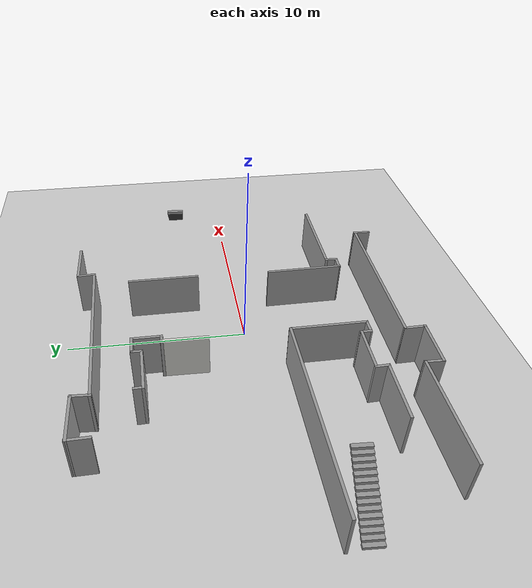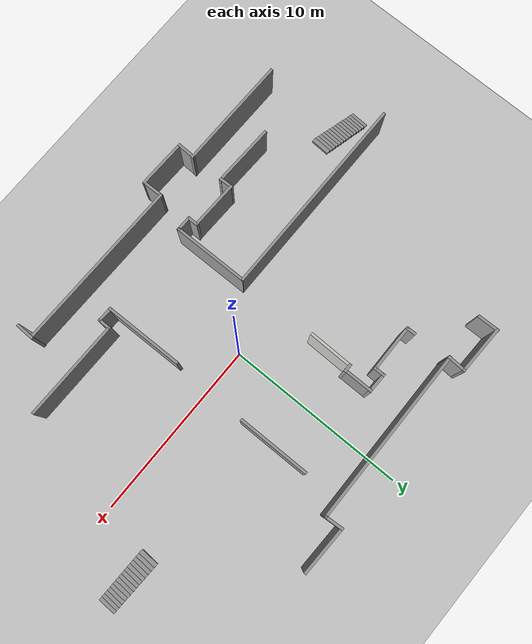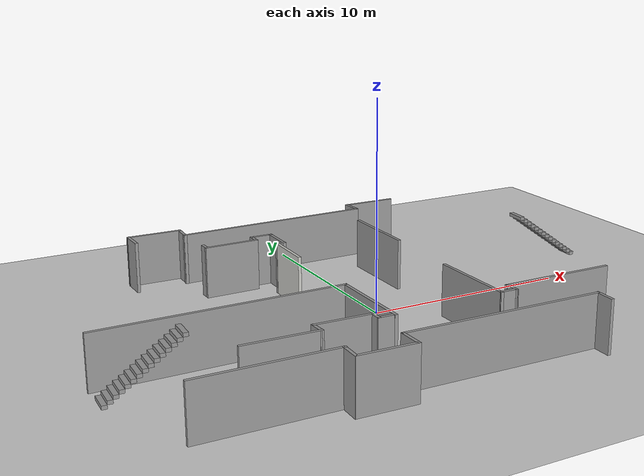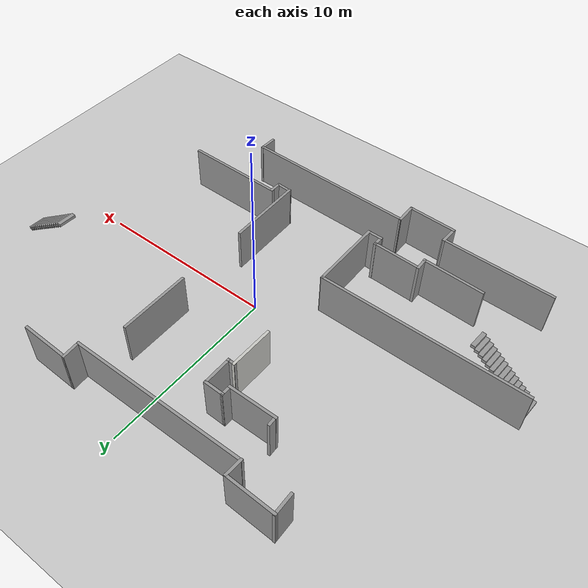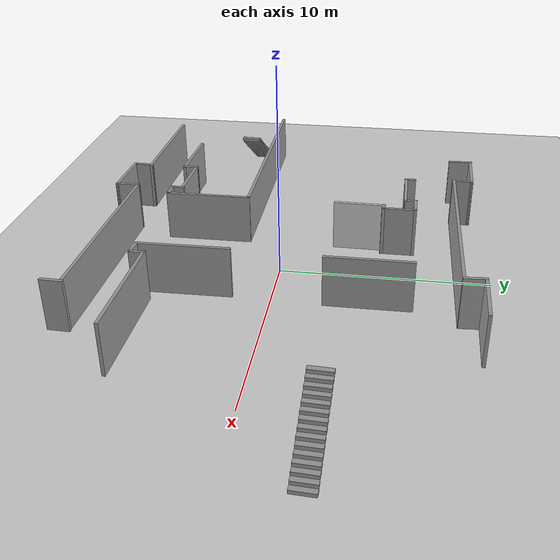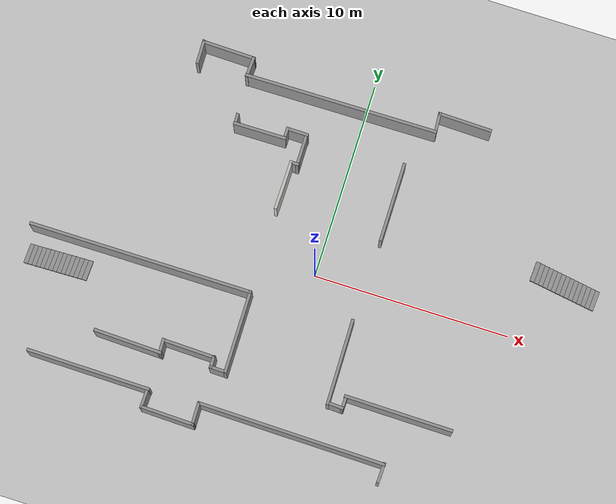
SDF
<sdf version="1.6">
 <world name="default">
  <model name="ground_plane">
   <static>1</static>
   <link name="link">
    <collision name="collision">
     <geometry><plane><normal>0 0 1</normal><size>100 100</size></plane></geometry>
     <surface><friction><ode><mu>100</mu><mu2>50</mu2></ode></friction></surface>
    </collision>
    <visual name="visual">
     <cast_shadows>0</cast_shadows>
     <geometry><plane><normal>0 0 1</normal><size>100 100</size></plane></geometry>
     <material>
      <script><uri>file://media/materials/scripts/gazebo.material</uri><name>Gazebo/Grey</name></script>
     </material>
    </visual>
   </link>
  </model>
  <model name="D1">
   <pose>0 0 0 0 0 -0.05</pose>
   <link name="Stairs_2">
    <visual name="Stairs_2_Visual_0">
     <pose>-13.6651 -3.89309 0.083333 0 -0 1.5708</pose>
     <geometry><box><size>1 0.233333 0.166667</size></box></geometry>
     <material>
      <script><uri>file://media/materials/scripts/gazebo.material</uri><name>Gazebo/Grey</name></script>
      <ambient>1 1 1 1</ambient>
     </material>
     <meta><layer>0</layer></meta>
    </visual>
    <collision name="Stairs_2_Collision_0">
     <geometry><box><size>1 0.233333 0.166667</size></box></geometry>
     <pose>-13.6651 -3.89309 0.083333 0 -0 1.5708</pose>
    </collision>
    <visual name="Stairs_2_Visual_1">
     <pose>-13.4318 -3.89309 0.25 0 -0 1.5708</pose>
     <geometry><box><size>1 0.233333 0.166667</size></box></geometry>
     <material>
      <script><uri>file://media/materials/scripts/gazebo.material</uri><name>Gazebo/Grey</name></script>
      <ambient>1 1 1 1</ambient>
     </material>
     <meta><layer>0</layer></meta>
    </visual>
    <collision name="Stairs_2_Collision_1">
     <geometry><box><size>1 0.233333 0.166667</size></box></geometry>
     <pose>-13.4318 -3.89309 0.25 0 -0 1.5708</pose>
    </collision>
    <visual name="Stairs_2_Visual_2">
     <pose>-13.1984 -3.89309 0.416667 0 -0 1.5708</pose>
     <geometry><box><size>1 0.233333 0.166667</size></box></geometry>
     <material>
      <script><uri>file://media/materials/scripts/gazebo.material</uri><name>Gazebo/Grey</name></script>
      <ambient>1 1 1 1</ambient>
     </material>
     <meta><layer>0</layer></meta>
    </visual>
    <collision name="Stairs_2_Collision_2">
     <geometry><box><size>1 0.233333 0.166667</size></box></geometry>
     <pose>-13.1984 -3.89309 0.416667 0 -0 1.5708</pose>
    </collision>
    <visual name="Stairs_2_Visual_3">
     <pose>-12.9651 -3.89309 0.583333 0 -0 1.5708</pose>
     <geometry><box><size>1 0.233333 0.166667</size></box></geometry>
     <material>
      <script><uri>file://media/materials/scripts/gazebo.material</uri><name>Gazebo/Grey</name></script>
      <ambient>1 1 1 1</ambient>
     </material>
     <meta><layer>0</layer></meta>
    </visual>
    <collision name="Stairs_2_Collision_3">
     <geometry><box><size>1 0.233333 0.166667</size></box></geometry>
     <pose>-12.9651 -3.89309 0.583333 0 -0 1.5708</pose>
    </collision>
    <visual name="Stairs_2_Visual_4">
     <pose>-12.7318 -3.89309 0.75 0 -0 1.5708</pose>
     <geometry><box><size>1 0.233333 0.166667</size></box></geometry>
     <material>
      <script><uri>file://media/materials/scripts/gazebo.material</uri><name>Gazebo/Grey</name></script>
      <ambient>1 1 1 1</ambient>
     </material>
     <meta><layer>0</layer></meta>
    </visual>
    <collision name="Stairs_2_Collision_4">
     <geometry><box><size>1 0.233333 0.166667</size></box></geometry>
     <pose>-12.7318 -3.89309 0.75 0 -0 1.5708</pose>
    </collision>
    <visual name="Stairs_2_Visual_5">
     <pose>-12.4984 -3.89309 0.916667 0 -0 1.5708</pose>
     <geometry><box><size>1 0.233333 0.166667</size></box></geometry>
     <material>
      <script><uri>file://media/materials/scripts/gazebo.material</uri><name>Gazebo/Grey</name></script>
      <ambient>1 1 1 1</ambient>
     </material>
     <meta><layer>0</layer></meta>
    </visual>
    <collision name="Stairs_2_Collision_5">
     <geometry><box><size>1 0.233333 0.166667</size></box></geometry>
     <pose>-12.4984 -3.89309 0.916667 0 -0 1.5708</pose>
    </collision>
    <visual name="Stairs_2_Visual_6">
     <pose>-12.2651 -3.89309 1.08333 0 -0 1.5708</pose>
     <geometry><box><size>1 0.233333 0.166667</size></box></geometry>
     <material>
      <script><uri>file://media/materials/scripts/gazebo.material</uri><name>Gazebo/Grey</name></script>
      <ambient>1 1 1 1</ambient>
     </material>
     <meta><layer>0</layer></meta>
    </visual>
    <collision name="Stairs_2_Collision_6">
     <geometry><box><size>1 0.233333 0.166667</size></box></geometry>
     <pose>-12.2651 -3.89309 1.08333 0 -0 1.5708</pose>
    </collision>
    <visual name="Stairs_2_Visual_7">
     <pose>-12.0318 -3.89309 1.25 0 -0 1.5708</pose>
     <geometry><box><size>1 0.233333 0.166667</size></box></geometry>
     <material>
      <script><uri>file://media/materials/scripts/gazebo.material</uri><name>Gazebo/Grey</name></script>
      <ambient>1 1 1 1</ambient>
     </material>
     <meta><layer>0</layer></meta>
    </visual>
    <collision name="Stairs_2_Collision_7">
     <geometry><box><size>1 0.233333 0.166667</size></box></geometry>
     <pose>-12.0318 -3.89309 1.25 0 -0 1.5708</pose>
    </collision>
    <visual name="Stairs_2_Visual_8">
     <pose>-11.7984 -3.89309 1.41667 0 -0 1.5708</pose>
     <geometry><box><size>1 0.233333 0.166667</size></box></geometry>
     <material>
      <script><uri>file://media/materials/scripts/gazebo.material</uri><name>Gazebo/Grey</name></script>
      <ambient>1 1 1 1</ambient>
     </material>
     <meta><layer>0</layer></meta>
    </visual>
    <collision name="Stairs_2_Collision_8">
     <geometry><box><size>1 0.233333 0.166667</size></box></geometry>
     <pose>-11.7984 -3.89309 1.41667 0 -0 1.5708</pose>
    </collision>
    <visual name="Stairs_2_Visual_9">
     <pose>-11.5651 -3.89309 1.58333 0 -0 1.5708</pose>
     <geometry><box><size>1 0.233333 0.166667</size></box></geometry>
     <material>
      <script><uri>file://media/materials/scripts/gazebo.material</uri><name>Gazebo/Grey</name></script>
      <ambient>1 1 1 1</ambient>
     </material>
     <meta><layer>0</layer></meta>
    </visual>
    <collision name="Stairs_2_Collision_9">
     <geometry><box><size>1 0.233333 0.166667</size></box></geometry>
     <pose>-11.5651 -3.89309 1.58333 0 -0 1.5708</pose>
    </collision>
    <visual name="Stairs_2_Visual_10">
     <pose>-11.3318 -3.89309 1.75 0 -0 1.5708</pose>
     <geometry><box><size>1 0.233333 0.166667</size></box></geometry>
     <material>
      <script><uri>file://media/materials/scripts/gazebo.material</uri><name>Gazebo/Grey</name></script>
      <ambient>1 1 1 1</ambient>
     </material>
     <meta><layer>0</layer></meta>
    </visual>
    <collision name="Stairs_2_Collision_10">
     <geometry><box><size>1 0.233333 0.166667</size></box></geometry>
     <pose>-11.3318 -3.89309 1.75 0 -0 1.5708</pose>
    </collision>
    <visual name="Stairs_2_Visual_11">
     <pose>-11.0984 -3.89309 1.91667 0 -0 1.5708</pose>
     <geometry><box><size>1 0.233333 0.166667</size></box></geometry>
     <material>
      <script><uri>file://media/materials/scripts/gazebo.material</uri><name>Gazebo/Grey</name></script>
      <ambient>1 1 1 1</ambient>
     </material>
     <meta><layer>0</layer></meta>
    </visual>
    <collision name="Stairs_2_Collision_11">
     <geometry><box><size>1 0.233333 0.166667</size></box></geometry>
     <pose>-11.0984 -3.89309 1.91667 0 -0 1.5708</pose>
    </collision>
    <visual name="Stairs_2_Visual_12">
     <pose>-10.8651 -3.89309 2.08333 0 -0 1.5708</pose>
     <geometry><box><size>1 0.233333 0.166667</size></box></geometry>
     <material>
      <script><uri>file://media/materials/scripts/gazebo.material</uri><name>Gazebo/Grey</name></script>
      <ambient>1 1 1 1</ambient>
     </material>
     <meta><layer>0</layer></meta>
    </visual>
    <collision name="Stairs_2_Collision_12">
     <geometry><box><size>1 0.233333 0.166667</size></box></geometry>
     <pose>-10.8651 -3.89309 2.08333 0 -0 1.5708</pose>
    </collision>
    <visual name="Stairs_2_Visual_13">
     <pose>-10.6318 -3.89309 2.25 0 -0 1.5708</pose>
     <geometry><box><size>1 0.233333 0.166667</size></box></geometry>
     <material>
      <script><uri>file://media/materials/scripts/gazebo.material</uri><name>Gazebo/Grey</name></script>
      <ambient>1 1 1 1</ambient>
     </material>
     <meta><layer>0</layer></meta>
    </visual>
    <collision name="Stairs_2_Collision_13">
     <geometry><box><size>1 0.233333 0.166667</size></box></geometry>
     <pose>-10.6318 -3.89309 2.25 0 -0 1.5708</pose>
    </collision>
    <visual name="Stairs_2_Visual_14">
     <pose>-10.3984 -3.89309 2.41667 0 -0 1.5708</pose>
     <geometry><box><size>1 0.233333 0.166667</size></box></geometry>
     <material>
      <script><uri>file://media/materials/scripts/gazebo.material</uri><name>Gazebo/Grey</name></script>
      <ambient>1 1 1 1</ambient>
     </material>
     <meta><layer>0</layer></meta>
    </visual>
    <collision name="Stairs_2_Collision_14">
     <geometry><box><size>1 0.233333 0.166667</size></box></geometry>
     <pose>-10.3984 -3.89309 2.41667 0 -0 1.5708</pose>
    </collision>
   </link>
   <link name="Stairs_3">
    <visual name="Stairs_3_Visual_0">
     <pose>13.3899 3.65816 0.083333 0 -0 -1.5708</pose>
     <geometry><box><size>1 0.233333 0.166667</size></box></geometry>
     <material>
      <script><uri>file://media/materials/scripts/gazebo.material</uri><name>Gazebo/Grey</name></script>
      <ambient>1 1 1 1</ambient>
     </material>
     <meta><layer>0</layer></meta>
    </visual>
    <collision name="Stairs_3_Collision_0">
     <geometry><box><size>1 0.233333 0.166667</size></box></geometry>
     <pose>13.3899 3.65816 0.083333 0 -0 -1.5708</pose>
    </collision>
    <visual name="Stairs_3_Visual_1">
     <pose>13.1565 3.65816 0.25 0 -0 -1.5708</pose>
     <geometry><box><size>1 0.233333 0.166667</size></box></geometry>
     <material>
      <script><uri>file://media/materials/scripts/gazebo.material</uri><name>Gazebo/Grey</name></script>
      <ambient>1 1 1 1</ambient>
     </material>
     <meta><layer>0</layer></meta>
    </visual>
    <collision name="Stairs_3_Collision_1">
     <geometry><box><size>1 0.233333 0.166667</size></box></geometry>
     <pose>13.1565 3.65816 0.25 0 -0 -1.5708</pose>
    </collision>
    <visual name="Stairs_3_Visual_2">
     <pose>12.9232 3.65816 0.416667 0 -0 -1.5708</pose>
     <geometry><box><size>1 0.233333 0.166667</size></box></geometry>
     <material>
      <script><uri>file://media/materials/scripts/gazebo.material</uri><name>Gazebo/Grey</name></script>
      <ambient>1 1 1 1</ambient>
     </material>
     <meta><layer>0</layer></meta>
    </visual>
    <collision name="Stairs_3_Collision_2">
     <geometry><box><size>1 0.233333 0.166667</size></box></geometry>
     <pose>12.9232 3.65816 0.416667 0 -0 -1.5708</pose>
    </collision>
    <visual name="Stairs_3_Visual_3">
     <pose>12.6899 3.65816 0.583333 0 -0 -1.5708</pose>
     <geometry><box><size>1 0.233333 0.166667</size></box></geometry>
     <material>
      <script><uri>file://media/materials/scripts/gazebo.material</uri><name>Gazebo/Grey</name></script>
      <ambient>1 1 1 1</ambient>
     </material>
     <meta><layer>0</layer></meta>
    </visual>
    <collision name="Stairs_3_Collision_3">
     <geometry><box><size>1 0.233333 0.166667</size></box></geometry>
     <pose>12.6899 3.65816 0.583333 0 -0 -1.5708</pose>
    </collision>
    <visual name="Stairs_3_Visual_4">
     <pose>12.4565 3.65816 0.75 0 -0 -1.5708</pose>
     <geometry><box><size>1 0.233333 0.166667</size></box></geometry>
     <material>
      <script><uri>file://media/materials/scripts/gazebo.material</uri><name>Gazebo/Grey</name></script>
      <ambient>1 1 1 1</ambient>
     </material>
     <meta><layer>0</layer></meta>
    </visual>
    <collision name="Stairs_3_Collision_4">
     <geometry><box><size>1 0.233333 0.166667</size></box></geometry>
     <pose>12.4565 3.65816 0.75 0 -0 -1.5708</pose>
    </collision>
    <visual name="Stairs_3_Visual_5">
     <pose>12.2232 3.65816 0.916667 0 -0 -1.5708</pose>
     <geometry><box><size>1 0.233333 0.166667</size></box></geometry>
     <material>
      <script><uri>file://media/materials/scripts/gazebo.material</uri><name>Gazebo/Grey</name></script>
      <ambient>1 1 1 1</ambient>
     </material>
     <meta><layer>0</layer></meta>
    </visual>
    <collision name="Stairs_3_Collision_5">
     <geometry><box><size>1 0.233333 0.166667</size></box></geometry>
     <pose>12.2232 3.65816 0.916667 0 -0 -1.5708</pose>
    </collision>
    <visual name="Stairs_3_Visual_6">
     <pose>11.9899 3.65816 1.08333 0 -0 -1.5708</pose>
     <geometry><box><size>1 0.233333 0.166667</size></box></geometry>
     <material>
      <script><uri>file://media/materials/scripts/gazebo.material</uri><name>Gazebo/Grey</name></script>
      <ambient>1 1 1 1</ambient>
     </material>
     <meta><layer>0</layer></meta>
    </visual>
    <collision name="Stairs_3_Collision_6">
     <geometry><box><size>1 0.233333 0.166667</size></box></geometry>
     <pose>11.9899 3.65816 1.08333 0 -0 -1.5708</pose>
    </collision>
    <visual name="Stairs_3_Visual_7">
     <pose>11.7565 3.65816 1.25 0 -0 -1.5708</pose>
     <geometry><box><size>1 0.233333 0.166667</size></box></geometry>
     <material>
      <script><uri>file://media/materials/scripts/gazebo.material</uri><name>Gazebo/Grey</name></script>
      <ambient>1 1 1 1</ambient>
     </material>
     <meta><layer>0</layer></meta>
    </visual>
    <collision name="Stairs_3_Collision_7">
     <geometry><box><size>1 0.233333 0.166667</size></box></geometry>
     <pose>11.7565 3.65816 1.25 0 -0 -1.5708</pose>
    </collision>
    <visual name="Stairs_3_Visual_8">
     <pose>11.5232 3.65816 1.41667 0 -0 -1.5708</pose>
     <geometry><box><size>1 0.233333 0.166667</size></box></geometry>
     <material>
      <script><uri>file://media/materials/scripts/gazebo.material</uri><name>Gazebo/Grey</name></script>
      <ambient>1 1 1 1</ambient>
     </material>
     <meta><layer>0</layer></meta>
    </visual>
    <collision name="Stairs_3_Collision_8">
     <geometry><box><size>1 0.233333 0.166667</size></box></geometry>
     <pose>11.5232 3.65816 1.41667 0 -0 -1.5708</pose>
    </collision>
    <visual name="Stairs_3_Visual_9">
     <pose>11.2899 3.65816 1.58333 0 -0 -1.5708</pose>
     <geometry><box><size>1 0.233333 0.166667</size></box></geometry>
     <material>
      <script><uri>file://media/materials/scripts/gazebo.material</uri><name>Gazebo/Grey</name></script>
      <ambient>1 1 1 1</ambient>
     </material>
     <meta><layer>0</layer></meta>
    </visual>
    <collision name="Stairs_3_Collision_9">
     <geometry><box><size>1 0.233333 0.166667</size></box></geometry>
     <pose>11.2899 3.65816 1.58333 0 -0 -1.5708</pose>
    </collision>
    <visual name="Stairs_3_Visual_10">
     <pose>11.0565 3.65816 1.75 0 -0 -1.5708</pose>
     <geometry><box><size>1 0.233333 0.166667</size></box></geometry>
     <material>
      <script><uri>file://media/materials/scripts/gazebo.material</uri><name>Gazebo/Grey</name></script>
      <ambient>1 1 1 1</ambient>
     </material>
     <meta><layer>0</layer></meta>
    </visual>
    <collision name="Stairs_3_Collision_10">
     <geometry><box><size>1 0.233333 0.166667</size></box></geometry>
     <pose>11.0565 3.65816 1.75 0 -0 -1.5708</pose>
    </collision>
    <visual name="Stairs_3_Visual_11">
     <pose>10.8232 3.65816 1.91667 0 -0 -1.5708</pose>
     <geometry><box><size>1 0.233333 0.166667</size></box></geometry>
     <material>
      <script><uri>file://media/materials/scripts/gazebo.material</uri><name>Gazebo/Grey</name></script>
      <ambient>1 1 1 1</ambient>
     </material>
     <meta><layer>0</layer></meta>
    </visual>
    <collision name="Stairs_3_Collision_11">
     <geometry><box><size>1 0.233333 0.166667</size></box></geometry>
     <pose>10.8232 3.65816 1.91667 0 -0 -1.5708</pose>
    </collision>
    <visual name="Stairs_3_Visual_12">
     <pose>10.5899 3.65816 2.08333 0 -0 -1.5708</pose>
     <geometry><box><size>1 0.233333 0.166667</size></box></geometry>
     <material>
      <script><uri>file://media/materials/scripts/gazebo.material</uri><name>Gazebo/Grey</name></script>
      <ambient>1 1 1 1</ambient>
     </material>
     <meta><layer>0</layer></meta>
    </visual>
    <collision name="Stairs_3_Collision_12">
     <geometry><box><size>1 0.233333 0.166667</size></box></geometry>
     <pose>10.5899 3.65816 2.08333 0 -0 -1.5708</pose>
    </collision>
    <visual name="Stairs_3_Visual_13">
     <pose>10.3565 3.65816 2.25 0 -0 -1.5708</pose>
     <geometry><box><size>1 0.233333 0.166667</size></box></geometry>
     <material>
      <script><uri>file://media/materials/scripts/gazebo.material</uri><name>Gazebo/Grey</name></script>
      <ambient>1 1 1 1</ambient>
     </material>
     <meta><layer>0</layer></meta>
    </visual>
    <collision name="Stairs_3_Collision_13">
     <geometry><box><size>1 0.233333 0.166667</size></box></geometry>
     <pose>10.3565 3.65816 2.25 0 -0 -1.5708</pose>
    </collision>
    <visual name="Stairs_3_Visual_14">
     <pose>10.1232 3.65816 2.41667 0 -0 -1.5708</pose>
     <geometry><box><size>1 0.233333 0.166667</size></box></geometry>
     <material>
      <script><uri>file://media/materials/scripts/gazebo.material</uri><name>Gazebo/Grey</name></script>
      <ambient>1 1 1 1</ambient>
     </material>
     <meta><layer>0</layer></meta>
    </visual>
    <collision name="Stairs_3_Collision_14">
     <geometry><box><size>1 0.233333 0.166667</size></box></geometry>
     <pose>10.1232 3.65816 2.41667 0 -0 -1.5708</pose>
    </collision>
   </link>
   <link name="Wall_103">
    <collision name="Wall_103_Collision">
     <geometry><box><size>3.49404 0.15 2.5</size></box></geometry>
     <pose>0 0 1.25 0 -0 0</pose>
    </collision>
    <visual name="Wall_103_Visual">
     <pose>0 0 1.25 0 -0 0</pose>
     <geometry><box><size>3.49404 0.15 2.5</size></box></geometry>
     <material>
      <script><uri>file://media/materials/scripts/gazebo.material</uri><name>Gazebo/Grey</name></script>
      <ambient>1 1 1 1</ambient>
     </material>
     <meta><layer>0</layer></meta>
    </visual>
    <pose>-7.33774 -6.4603 0 0 -0 0.018625</pose>
   </link>
   <link name="Wall_104">
    <collision name="Wall_104_Collision">
     <geometry><box><size>0.795236 0.15 2.5</size></box></geometry>
     <pose>0 0 1.25 0 -0 0</pose>
    </collision>
    <visual name="Wall_104_Visual">
     <pose>0 0 1.25 0 -0 0</pose>
     <geometry><box><size>0.795236 0.15 2.5</size></box></geometry>
     <material>
      <script><uri>file://media/materials/scripts/gazebo.material</uri><name>Gazebo/Grey</name></script>
      <ambient>1 1 1 1</ambient>
     </material>
     <meta><layer>0</layer></meta>
    </visual>
    <pose>-5.70354 -6.10783 0 0 -0 1.66029</pose>
   </link>
   <link name="Wall_105">
    <collision name="Wall_105_Collision">
     <geometry><box><size>2.73731 0.15 2.5</size></box></geometry>
     <pose>0 0 1.25 0 -0 0</pose>
    </collision>
    <visual name="Wall_105_Visual">
     <pose>0 0 1.25 0 -0 0</pose>
     <geometry><box><size>2.73731 0.15 2.5</size></box></geometry>
     <material>
      <script><uri>file://media/materials/scripts/gazebo.material</uri><name>Gazebo/Grey</name></script>
      <ambient>1 1 1 1</ambient>
     </material>
     <meta><layer>0</layer></meta>
    </visual>
    <pose>-4.43039 -5.76472 0 0 -0 0.023559</pose>
   </link>
   <link name="Wall_106">
    <collision name="Wall_106_Collision">
     <geometry><box><size>0.653616 0.15 2.5</size></box></geometry>
     <pose>0 0 1.25 0 -0 0</pose>
    </collision>
    <visual name="Wall_106_Visual">
     <pose>0 0 1.25 0 -0 0</pose>
     <geometry><box><size>0.653616 0.15 2.5</size></box></geometry>
     <material>
      <script><uri>file://media/materials/scripts/gazebo.material</uri><name>Gazebo/Grey</name></script>
      <ambient>1 1 1 1</ambient>
     </material>
     <meta><layer>0</layer></meta>
    </visual>
    <pose>-3.11506 -5.96831 0 0 0 -1.51781</pose>
   </link>
   <link name="Wall_107">
    <collision name="Wall_107_Collision">
     <geometry><box><size>0.894241 0.15 2.5</size></box></geometry>
     <pose>0 0 1.25 0 -0 0</pose>
    </collision>
    <visual name="Wall_107_Visual">
     <pose>0 0 1.25 0 -0 0</pose>
     <geometry><box><size>0.894241 0.15 2.5</size></box></geometry>
     <material>
      <script><uri>file://media/materials/scripts/gazebo.material</uri><name>Gazebo/Grey</name></script>
      <ambient>1 1 1 1</ambient>
     </material>
     <meta><layer>0</layer></meta>
    </visual>
    <pose>-2.72968 -6.2144 0 0 -0 0.037791</pose>
   </link>
   <link name="Wall_108">
    <collision name="Wall_108_Collision">
     <geometry><box><size>4.24433 0.15 2.5</size></box></geometry>
     <pose>0 0 1.25 0 -0 0</pose>
    </collision>
    <visual name="Wall_108_Visual">
     <pose>0 0 1.25 0 -0 0</pose>
     <geometry><box><size>4.24433 0.15 2.5</size></box></geometry>
     <material>
      <script><uri>file://media/materials/scripts/gazebo.material</uri><name>Gazebo/Grey</name></script>
      <ambient>1 1 1 1</ambient>
     </material>
     <meta><layer>0</layer></meta>
    </visual>
    <pose>-2.46576 -4.1652 0 0 -0 1.62789</pose>
   </link>
   <link name="Wall_109">
    <collision name="Wall_109_Collision">
     <geometry><box><size>11.3689 0.15 2.5</size></box></geometry>
     <pose>0 0 1.25 0 -0 0</pose>
    </collision>
    <visual name="Wall_109_Visual">
     <pose>0 0 1.25 0 -0 0</pose>
     <geometry><box><size>11.3689 0.15 2.5</size></box></geometry>
     <material>
      <script><uri>file://media/materials/scripts/gazebo.material</uri><name>Gazebo/Grey</name></script>
      <ambient>1 1 1 1</ambient>
     </material>
     <meta><layer>0</layer></meta>
    </visual>
    <pose>-8.22003 -2.40121 0 0 0 -3.09169</pose>
   </link>
   <link name="Wall_120">
    <collision name="Wall_120_Collision">
     <geometry><box><size>4.36198 0.15 2.5</size></box></geometry>
     <pose>0 0 1.25 0 -0 0</pose>
    </collision>
    <visual name="Wall_120_Visual">
     <pose>0 0 1.25 0 -0 0</pose>
     <geometry><box><size>4.36198 0.15 2.5</size></box></geometry>
     <material>
      <script><uri>file://media/materials/scripts/gazebo.material</uri><name>Gazebo/Grey</name></script>
      <ambient>1 1 1 1</ambient>
     </material>
     <meta><layer>0</layer></meta>
    </visual>
    <pose>2.72249 -3.79955 0 0 0 -1.50734</pose>
   </link>
   <link name="Wall_121">
    <collision name="Wall_121_Collision">
     <geometry><box><size>0.873507 0.15 2.5</size></box></geometry>
     <pose>0 0 1.25 0 -0 0</pose>
    </collision>
    <visual name="Wall_121_Visual">
     <pose>0 0 1.25 0 -0 0</pose>
     <geometry><box><size>0.873507 0.15 2.5</size></box></geometry>
     <material>
      <script><uri>file://media/materials/scripts/gazebo.material</uri><name>Gazebo/Grey</name></script>
      <ambient>1 1 1 1</ambient>
     </material>
     <meta><layer>0</layer></meta>
    </visual>
    <pose>3.21778 -5.87986 0 0 -0 0.004303</pose>
   </link>
   <link name="Wall_122">
    <collision name="Wall_122_Collision">
     <geometry><box><size>0.750329 0.15 2.5</size></box></geometry>
     <pose>0 0 1.25 0 -0 0</pose>
    </collision>
    <visual name="Wall_122_Visual">
     <pose>0 0 1.25 0 -0 0</pose>
     <geometry><box><size>0.750329 0.15 2.5</size></box></geometry>
     <material>
      <script><uri>file://media/materials/scripts/gazebo.material</uri><name>Gazebo/Grey</name></script>
      <ambient>1 1 1 1</ambient>
     </material>
     <meta><layer>0</layer></meta>
    </visual>
    <pose>3.59259 -5.5783 0 0 -0 1.60393</pose>
   </link>
   <link name="Wall_123">
    <collision name="Wall_123_Collision">
     <geometry><box><size>5.55126 0.15 2.5</size></box></geometry>
     <pose>0 0 1.25 0 -0 0</pose>
    </collision>
    <visual name="Wall_123_Visual">
     <pose>0 0 1.25 0 -0 0</pose>
     <geometry><box><size>5.55126 0.15 2.5</size></box></geometry>
     <material>
      <script><uri>file://media/materials/scripts/gazebo.material</uri><name>Gazebo/Grey</name></script>
      <ambient>1 1 1 1</ambient>
     </material>
     <meta><layer>0</layer></meta>
    </visual>
    <pose>6.25812 -5.17048 0 0 -0 0.039936</pose>
   </link>
   <link name="Wall_138">
    <collision name="Wall_138_Collision">
     <geometry><box><size>2.51575 0.15 2.5</size></box></geometry>
     <pose>0 0 1.25 0 -0 0</pose>
    </collision>
    <visual name="Wall_138_Visual">
     <pose>0 0 1.25 0 -0 0</pose>
     <geometry><box><size>2.51575 0.15 2.5</size></box></geometry>
     <material>
      <script><uri>file://media/materials/scripts/gazebo.material</uri><name>Gazebo/CeilingTiled</name></script>
      <ambient>1 1 1 1</ambient>
     </material>
     <meta><layer>0</layer></meta>
    </visual>
    <pose>-2.91583 3.40987 0 0 -0 1.60635</pose>
   </link>
   <link name="Wall_139">
    <collision name="Wall_139_Collision">
     <geometry><box><size>0.491598 0.15 2.5</size></box></geometry>
     <pose>0 0 1.25 0 -0 0</pose>
    </collision>
    <visual name="Wall_139_Visual">
     <pose>0 0 1.25 0 -0 0</pose>
     <geometry><box><size>0.491598 0.15 2.5</size></box></geometry>
     <material>
      <script><uri>file://media/materials/scripts/gazebo.material</uri><name>Gazebo/Grey</name></script>
      <ambient>1 1 1 1</ambient>
     </material>
     <meta><layer>0</layer></meta>
    </visual>
    <pose>-2.79598 4.59254 0 0 -0 0.053849</pose>
   </link>
   <link name="Wall_140">
    <collision name="Wall_140_Collision">
     <geometry><box><size>1.68278 0.15 2.5</size></box></geometry>
     <pose>0 0 1.25 0 -0 0</pose>
    </collision>
    <visual name="Wall_140_Visual">
     <pose>0 0 1.25 0 -0 0</pose>
     <geometry><box><size>1.68278 0.15 2.5</size></box></geometry>
     <material>
      <script><uri>file://media/materials/scripts/gazebo.material</uri><name>Gazebo/Grey</name></script>
      <ambient>1 1 1 1</ambient>
     </material>
     <meta><layer>0</layer></meta>
    </visual>
    <pose>-2.67482 5.35839 0 0 -0 1.624</pose>
   </link>
   <link name="Wall_141">
    <collision name="Wall_141_Collision">
     <geometry><box><size>1.13895 0.15 2.5</size></box></geometry>
     <pose>0 0 1.25 0 -0 0</pose>
    </collision>
    <visual name="Wall_141_Visual">
     <pose>0 0 1.25 0 -0 0</pose>
     <geometry><box><size>1.13895 0.15 2.5</size></box></geometry>
     <material>
      <script><uri>file://media/materials/scripts/gazebo.material</uri><name>Gazebo/Grey</name></script>
      <ambient>1 1 1 1</ambient>
     </material>
     <meta><layer>0</layer></meta>
    </visual>
    <pose>-3.2011 6.11505 0 0 0 -3.10661</pose>
   </link>
   <link name="Wall_142">
    <collision name="Wall_142_Collision">
     <geometry><box><size>0.640872 0.15 2.5</size></box></geometry>
     <pose>0 0 1.25 0 -0 0</pose>
    </collision>
    <visual name="Wall_142_Visual">
     <pose>0 0 1.25 0 -0 0</pose>
     <geometry><box><size>0.640872 0.15 2.5</size></box></geometry>
     <material>
      <script><uri>file://media/materials/scripts/gazebo.material</uri><name>Gazebo/Grey</name></script>
      <ambient>1 1 1 1</ambient>
     </material>
     <meta><layer>0</layer></meta>
    </visual>
    <pose>-3.69212 5.85233 0 0 0 -1.52274</pose>
   </link>
   <link name="Wall_143">
    <collision name="Wall_143_Collision">
     <geometry><box><size>2.69489 0.15 2.5</size></box></geometry>
     <pose>0 0 1.25 0 -0 0</pose>
    </collision>
    <visual name="Wall_143_Visual">
     <pose>0 0 1.25 0 -0 0</pose>
     <geometry><box><size>2.69489 0.15 2.5</size></box></geometry>
     <material>
      <script><uri>file://media/materials/scripts/gazebo.material</uri><name>Gazebo/Grey</name></script>
      <ambient>1 1 1 1</ambient>
     </material>
     <meta><layer>0</layer></meta>
    </visual>
    <pose>-4.95053 5.52302 0 0 0 -3.08244</pose>
   </link>
   <link name="Wall_144">
    <collision name="Wall_144_Collision">
     <geometry><box><size>0.573592 0.15 2.5</size></box></geometry>
     <pose>0 0 1.25 0 -0 0</pose>
    </collision>
    <visual name="Wall_144_Visual">
     <pose>0 0 1.25 0 -0 0</pose>
     <geometry><box><size>0.573592 0.15 2.5</size></box></geometry>
     <material>
      <script><uri>file://media/materials/scripts/gazebo.material</uri><name>Gazebo/Grey</name></script>
      <ambient>1 1 1 1</ambient>
     </material>
     <meta><layer>0</layer></meta>
    </visual>
    <pose>-6.23162 5.66733 0 0 -0 1.66306</pose>
   </link>
   <link name="Wall_152">
    <collision name="Wall_152_Collision">
     <geometry><box><size>4.0274 0.15 2.5</size></box></geometry>
     <pose>0 0 1.25 0 -0 0</pose>
    </collision>
    <visual name="Wall_152_Visual">
     <pose>0 0 1.25 0 -0 0</pose>
     <geometry><box><size>4.0274 0.15 2.5</size></box></geometry>
     <material>
      <script><uri>file://media/materials/scripts/gazebo.material</uri><name>Gazebo/Grey</name></script>
      <ambient>1 1 1 1</ambient>
     </material>
     <meta><layer>0</layer></meta>
    </visual>
    <pose>2.39194 4.46929 0 0 0 -1.51665</pose>
   </link>
   <link name="Wall_32">
    <collision name="Wall_32_Collision">
     <geometry><box><size>1.23044 0.15 2.5</size></box></geometry>
     <pose>0 0 1.25 0 -0 0</pose>
    </collision>
    <visual name="Wall_32_Visual">
     <pose>0 0 1.25 0 -0 0</pose>
     <geometry><box><size>1.23044 0.15 2.5</size></box></geometry>
     <material>
      <script><uri>file://media/materials/scripts/gazebo.material</uri><name>Gazebo/Grey</name></script>
      <ambient>1 1 1 1</ambient>
     </material>
     <meta><layer>0</layer></meta>
    </visual>
    <pose>-9.06177 8.20797 0 0 -0 1.64084</pose>
   </link>
   <link name="Wall_33">
    <collision name="Wall_33_Collision">
     <geometry><box><size>2.74214 0.15 2.5</size></box></geometry>
     <pose>0 0 1.25 0 -0 0</pose>
    </collision>
    <visual name="Wall_33_Visual">
     <pose>0 0 1.25 0 -0 0</pose>
     <geometry><box><size>2.74214 0.15 2.5</size></box></geometry>
     <material>
      <script><uri>file://media/materials/scripts/gazebo.material</uri><name>Gazebo/Grey</name></script>
      <ambient>1 1 1 1</ambient>
     </material>
     <meta><layer>0</layer></meta>
    </visual>
    <pose>-7.8036 8.76955 0 0 -0 0.029164</pose>
   </link>
   <link name="Wall_34">
    <collision name="Wall_34_Collision">
     <geometry><box><size>1.0534 0.15 2.5</size></box></geometry>
     <pose>0 0 1.25 0 -0 0</pose>
    </collision>
    <visual name="Wall_34_Visual">
     <pose>0 0 1.25 0 -0 0</pose>
     <geometry><box><size>1.0534 0.15 2.5</size></box></geometry>
     <material>
      <script><uri>file://media/materials/scripts/gazebo.material</uri><name>Gazebo/Grey</name></script>
      <ambient>1 1 1 1</ambient>
     </material>
     <meta><layer>0</layer></meta>
    </visual>
    <pose>-6.50761 8.34053 0 0 0 -1.5708</pose>
   </link>
   <link name="Wall_35">
    <collision name="Wall_35_Collision">
     <geometry><box><size>9.83559 0.15 2.5</size></box></geometry>
     <pose>0 0 1.25 0 -0 0</pose>
    </collision>
    <visual name="Wall_35_Visual">
     <pose>0 0 1.25 0 -0 0</pose>
     <geometry><box><size>9.83559 0.15 2.5</size></box></geometry>
     <material>
      <script><uri>file://media/materials/scripts/gazebo.material</uri><name>Gazebo/Grey</name></script>
      <ambient>1 1 1 1</ambient>
     </material>
     <meta><layer>0</layer></meta>
    </visual>
    <pose>-1.68847 8.19129 0 0 -0 0.059367</pose>
   </link>
   <link name="Wall_36">
    <collision name="Wall_36_Collision">
     <geometry><box><size>1.06052 0.15 2.5</size></box></geometry>
     <pose>0 0 1.25 0 -0 0</pose>
    </collision>
    <visual name="Wall_36_Visual">
     <pose>0 0 1.25 0 -0 0</pose>
     <geometry><box><size>1.06052 0.15 2.5</size></box></geometry>
     <material>
      <script><uri>file://media/materials/scripts/gazebo.material</uri><name>Gazebo/Grey</name></script>
      <ambient>1 1 1 1</ambient>
     </material>
     <meta><layer>0</layer></meta>
    </visual>
    <pose>3.10798 8.94592 0 0 -0 1.68732</pose>
   </link>
   <link name="Wall_37">
    <collision name="Wall_37_Collision">
     <geometry><box><size>2.73598 0.15 2.5</size></box></geometry>
     <pose>0 0 1.25 0 -0 0</pose>
    </collision>
    <visual name="Wall_37_Visual">
     <pose>0 0 1.25 0 -0 0</pose>
     <geometry><box><size>2.73598 0.15 2.5</size></box></geometry>
     <material>
      <script><uri>file://media/materials/scripts/gazebo.material</uri><name>Gazebo/Grey</name></script>
      <ambient>1 1 1 1</ambient>
     </material>
     <meta><layer>0</layer></meta>
    </visual>
    <pose>4.37774 9.4359 0 0 -0 0.029244</pose>
   </link>
   <link name="Wall_83">
    <collision name="Wall_83_Collision">
     <geometry><box><size>1.0325 0.15 2.5</size></box></geometry>
     <pose>0 0 1.25 0 -0 0</pose>
    </collision>
    <visual name="Wall_83_Visual">
     <pose>0 0 1.25 0 -0 0</pose>
     <geometry><box><size>1.0325 0.15 2.5</size></box></geometry>
     <material>
      <script><uri>file://media/materials/scripts/gazebo.material</uri><name>Gazebo/Grey</name></script>
      <ambient>1 1 1 1</ambient>
     </material>
     <meta><layer>0</layer></meta>
    </visual>
    <pose>6.46167 -8.16671 0 0 -0 1.58978</pose>
   </link>
   <link name="Wall_85">
    <collision name="Wall_85_Collision">
     <geometry><box><size>9.5849 0.15 2.5</size></box></geometry>
     <pose>0 0 1.25 0 -0 0</pose>
    </collision>
    <visual name="Wall_85_Visual">
     <pose>0 0 1.25 0 -0 0</pose>
     <geometry><box><size>9.5849 0.15 2.5</size></box></geometry>
     <material>
      <script><uri>file://media/materials/scripts/gazebo.material</uri><name>Gazebo/Grey</name></script>
      <ambient>1 1 1 1</ambient>
     </material>
     <meta><layer>0</layer></meta>
    </visual>
    <pose>1.71575 -7.91413 0 0 0 -3.10648</pose>
   </link>
   <link name="Wall_86">
    <collision name="Wall_86_Collision">
     <geometry><box><size>1.21202 0.15 2.5</size></box></geometry>
     <pose>0 0 1.25 0 -0 0</pose>
    </collision>
    <visual name="Wall_86_Visual">
     <pose>0 0 1.25 0 -0 0</pose>
     <geometry><box><size>1.21202 0.15 2.5</size></box></geometry>
     <material>
      <script><uri>file://media/materials/scripts/gazebo.material</uri><name>Gazebo/Grey</name></script>
      <ambient>1 1 1 1</ambient>
     </material>
     <meta><layer>0</layer></meta>
    </visual>
    <pose>-2.98548 -8.6095 0 0 0 -1.50237</pose>
   </link>
   <link name="Wall_87">
    <collision name="Wall_87_Collision">
     <geometry><box><size>2.76249 0.15 2.5</size></box></geometry>
     <pose>0 0 1.25 0 -0 0</pose>
    </collision>
    <visual name="Wall_87_Visual">
     <pose>0 0 1.25 0 -0 0</pose>
     <geometry><box><size>2.76249 0.15 2.5</size></box></geometry>
     <material>
      <script><uri>file://media/materials/scripts/gazebo.material</uri><name>Gazebo/Grey</name></script>
      <ambient>1 1 1 1</ambient>
     </material>
     <meta><layer>0</layer></meta>
    </visual>
    <pose>-4.25462 -9.18493 0 0 0 -3.11993</pose>
   </link>
   <link name="Wall_88">
    <collision name="Wall_88_Collision">
     <geometry><box><size>1.06622 0.15 2.5</size></box></geometry>
     <pose>0 0 1.25 0 -0 0</pose>
    </collision>
    <visual name="Wall_88_Visual">
     <pose>0 0 1.25 0 -0 0</pose>
     <geometry><box><size>1.06622 0.15 2.5</size></box></geometry>
     <material>
      <script><uri>file://media/materials/scripts/gazebo.material</uri><name>Gazebo/Grey</name></script>
      <ambient>1 1 1 1</ambient>
     </material>
     <meta><layer>0</layer></meta>
    </visual>
    <pose>-5.58625 -8.75519 0 0 -0 1.59</pose>
   </link>
   <link name="Wall_89">
    <collision name="Wall_89_Collision">
     <geometry><box><size>6.29785 0.15 2.5</size></box></geometry>
     <pose>0 0 1.25 0 -0 0</pose>
    </collision>
    <visual name="Wall_89_Visual">
     <pose>0 0 1.25 0 -0 0</pose>
     <geometry><box><size>6.29785 0.15 2.5</size></box></geometry>
     <material>
      <script><uri>file://media/materials/scripts/gazebo.material</uri><name>Gazebo/Grey</name></script>
      <ambient>1 1 1 1</ambient>
     </material>
     <meta><layer>0</layer></meta>
    </visual>
    <pose>-8.64926 -8.41648 0 0 0 -3.10277</pose>
   </link>
   <static>1</static>
  </model>
 </world>
</sdf>
